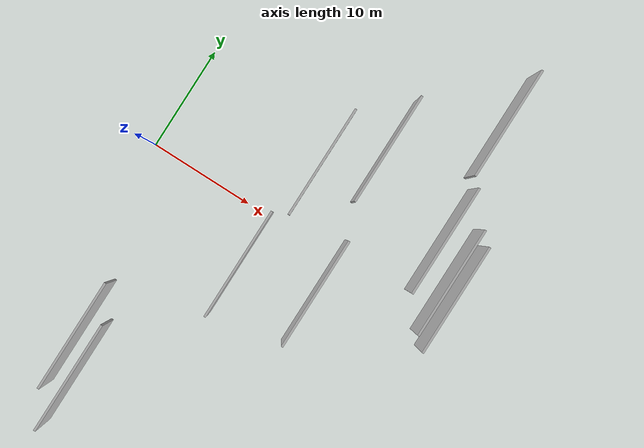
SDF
<sdf version="1.6">
 <world name="default">
  <scene>
   <sky><clouds><speed>12</speed></clouds></sky>
   <ambient>0.4 0.4 0.4 1</ambient>
   <background>0.7 0.7 0.7 1</background>
   <shadows>1</shadows>
  </scene>
  <gravity>0 0 -9.8066</gravity>
  <magnetic_field>6e-06 2.3e-05 -4.2e-05</magnetic_field>
  <physics default="0" name="default_physics" type="ode">
   <ode>
    <solver>
     <type>quick</type>
     <iters>10</iters>
     <sor>1.0</sor>
     <use_dynamic_moi_rescaling>0</use_dynamic_moi_rescaling>
    </solver>
    <constraints>
     <cfm>0</cfm>
     <erp>0.2</erp>
     <contact_max_correcting_vel>100</contact_max_correcting_vel>
     <contact_surface_layer>0.001</contact_surface_layer>
    </constraints>
   </ode>
   <max_step_size>0.004</max_step_size>
   <real_time_factor>1</real_time_factor>
   <real_time_update_rate>250</real_time_update_rate>
  </physics>
  <light name="sun" type="directional">
   <pose>0 0 10 0 0 0</pose>
   <diffuse>0.8 0.8 0.8 1</diffuse>
   <specular>0.2 0.2 0.2 1</specular>
   <attenuation>
    <range>1000</range>
    <constant>0.9</constant>
    <linear>0.01</linear>
    <quadratic>0.001</quadratic>
   </attenuation>
   <direction>-0.5 0.1 -0.9</direction>
  </light>
  <model name="grey_wall_1">
   <static>1</static>
   <pose>28.6021 2.5477 5.0 0.000000 0.000000 1.570796</pose>
   <link name="link">
    <pose>0 0 2.00 0 0 0</pose>
    <collision name="collision"><geometry><box><size>10.00 0.2 4.00</size></box></geometry></collision>
    <visual name="visual">
     <cast_shadows>0</cast_shadows>
     <geometry><box><size>10.00 0.2 4.00</size></box></geometry>
     <material>
      <script>
       <uri>model://HANNAS_wall/materials/scripts</uri>
       <uri>model://HANNAS_wall/materials/textures</uri>
       <name>vrc/HANNAS_wall</name>
      </script>
     </material>
    </visual>
   </link>
  </model>
  <model name="grey_wall_2">
   <static>1</static>
   <pose>12.3738 -4.3766 5.0 0.000000 0.000000 1.570796</pose>
   <link name="link">
    <pose>0 0 2.00 0 0 0</pose>
    <collision name="collision"><geometry><box><size>10.00 0.2 4.00</size></box></geometry></collision>
    <visual name="visual">
     <cast_shadows>0</cast_shadows>
     <geometry><box><size>10.00 0.2 4.00</size></box></geometry>
     <material>
      <script>
       <uri>model://HANNAS_wall/materials/scripts</uri>
       <uri>model://HANNAS_wall/materials/textures</uri>
       <name>vrc/HANNAS_wall</name>
      </script>
     </material>
    </visual>
   </link>
  </model>
  <model name="grey_wall_3">
   <static>1</static>
   <pose>17.5393 9.8349 5.0 0.000000 0.000000 1.570796</pose>
   <link name="link">
    <pose>0 0 2.00 0 0 0</pose>
    <collision name="collision"><geometry><box><size>10.00 0.2 4.00</size></box></geometry></collision>
    <visual name="visual">
     <cast_shadows>0</cast_shadows>
     <geometry><box><size>10.00 0.2 4.00</size></box></geometry>
     <material>
      <script>
       <uri>model://HANNAS_wall/materials/scripts</uri>
       <uri>model://HANNAS_wall/materials/textures</uri>
       <name>vrc/HANNAS_wall</name>
      </script>
     </material>
    </visual>
   </link>
  </model>
  <model name="grey_wall_4">
   <static>1</static>
   <pose>18.8667 -3.0712 5.0 0.000000 0.000000 1.570796</pose>
   <link name="link">
    <pose>0 0 2.00 0 0 0</pose>
    <collision name="collision"><geometry><box><size>10.00 0.2 4.00</size></box></geometry></collision>
    <visual name="visual">
     <cast_shadows>0</cast_shadows>
     <geometry><box><size>10.00 0.2 4.00</size></box></geometry>
     <material>
      <script>
       <uri>model://HANNAS_wall/materials/scripts</uri>
       <uri>model://HANNAS_wall/materials/textures</uri>
       <name>vrc/HANNAS_wall</name>
      </script>
     </material>
    </visual>
   </link>
  </model>
  <model name="grey_wall_5">
   <static>1</static>
   <pose>27.5717 3.5248 5.0 0.000000 0.000000 1.570796</pose>
   <link name="link">
    <pose>0 0 2.00 0 0 0</pose>
    <collision name="collision"><geometry><box><size>10.00 0.2 4.00</size></box></geometry></collision>
    <visual name="visual">
     <cast_shadows>0</cast_shadows>
     <geometry><box><size>10.00 0.2 4.00</size></box></geometry>
     <material>
      <script>
       <uri>model://HANNAS_wall/materials/scripts</uri>
       <uri>model://HANNAS_wall/materials/textures</uri>
       <name>vrc/HANNAS_wall</name>
      </script>
     </material>
    </visual>
   </link>
  </model>
  <model name="grey_wall_6">
   <static>1</static>
   <pose>4.2361 -16.3548 5.0 0.000000 0.000000 1.570796</pose>
   <link name="link">
    <pose>0 0 2.00 0 0 0</pose>
    <collision name="collision"><geometry><box><size>10.00 0.2 4.00</size></box></geometry></collision>
    <visual name="visual">
     <cast_shadows>0</cast_shadows>
     <geometry><box><size>10.00 0.2 4.00</size></box></geometry>
     <material>
      <script>
       <uri>model://HANNAS_wall/materials/scripts</uri>
       <uri>model://HANNAS_wall/materials/textures</uri>
       <name>vrc/HANNAS_wall</name>
      </script>
     </material>
    </visual>
   </link>
  </model>
  <model name="grey_wall_7">
   <static>1</static>
   <pose>24.5439 16.7301 5.0 0.000000 0.000000 1.570796</pose>
   <link name="link">
    <pose>0 0 2.00 0 0 0</pose>
    <collision name="collision"><geometry><box><size>10.00 0.2 4.00</size></box></geometry></collision>
    <visual name="visual">
     <cast_shadows>0</cast_shadows>
     <geometry><box><size>10.00 0.2 4.00</size></box></geometry>
     <material>
      <script>
       <uri>model://HANNAS_wall/materials/scripts</uri>
       <uri>model://HANNAS_wall/materials/textures</uri>
       <name>vrc/HANNAS_wall</name>
      </script>
     </material>
    </visual>
   </link>
  </model>
  <model name="grey_wall_8">
   <static>1</static>
   <pose>13.6475 6.1175 5.0 0.000000 0.000000 1.570796</pose>
   <link name="link">
    <pose>0 0 2.00 0 0 0</pose>
    <collision name="collision"><geometry><box><size>10.00 0.2 4.00</size></box></geometry></collision>
    <visual name="visual">
     <cast_shadows>0</cast_shadows>
     <geometry><box><size>10.00 0.2 4.00</size></box></geometry>
     <material>
      <script>
       <uri>model://HANNAS_wall/materials/scripts</uri>
       <uri>model://HANNAS_wall/materials/textures</uri>
       <name>vrc/HANNAS_wall</name>
      </script>
     </material>
    </visual>
   </link>
  </model>
  <model name="grey_wall_9">
   <static>1</static>
   <pose>5.8037 -19.3465 5.0 0.000000 0.000000 1.570796</pose>
   <link name="link">
    <pose>0 0 2.00 0 0 0</pose>
    <collision name="collision"><geometry><box><size>10.00 0.2 4.00</size></box></geometry></collision>
    <visual name="visual">
     <cast_shadows>0</cast_shadows>
     <geometry><box><size>10.00 0.2 4.00</size></box></geometry>
     <material>
      <script>
       <uri>model://HANNAS_wall/materials/scripts</uri>
       <uri>model://HANNAS_wall/materials/textures</uri>
       <name>vrc/HANNAS_wall</name>
      </script>
     </material>
    </visual>
   </link>
  </model>
  <model name="grey_wall_10">
   <static>1</static>
   <pose>25.3638 6.0939 5.0 0.000000 0.000000 1.570796</pose>
   <link name="link">
    <pose>0 0 2.00 0 0 0</pose>
    <collision name="collision"><geometry><box><size>10.00 0.2 4.00</size></box></geometry></collision>
    <visual name="visual">
     <cast_shadows>0</cast_shadows>
     <geometry><box><size>10.00 0.2 4.00</size></box></geometry>
     <material>
      <script>
       <uri>model://HANNAS_wall/materials/scripts</uri>
       <uri>model://HANNAS_wall/materials/textures</uri>
       <name>vrc/HANNAS_wall</name>
      </script>
     </material>
    </visual>
   </link>
  </model>
 </world>
</sdf>
